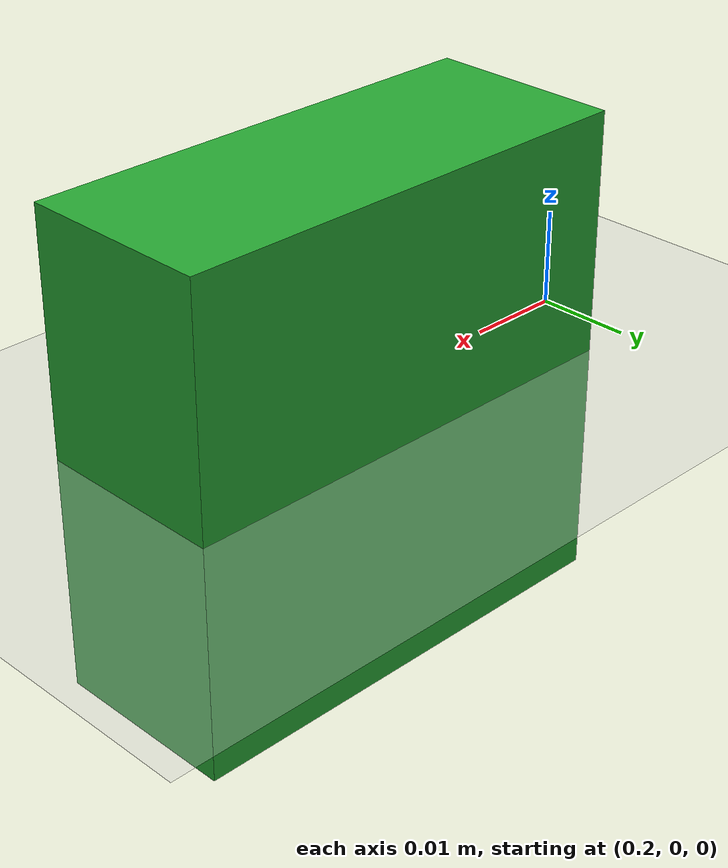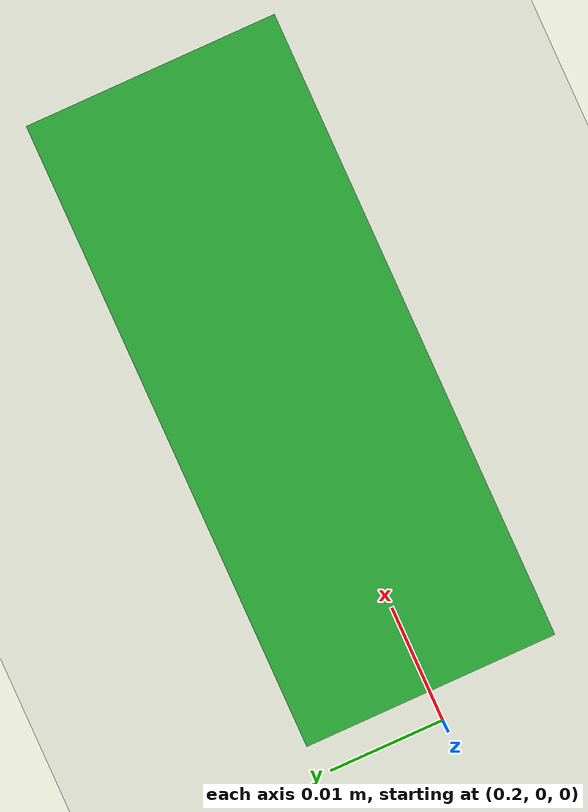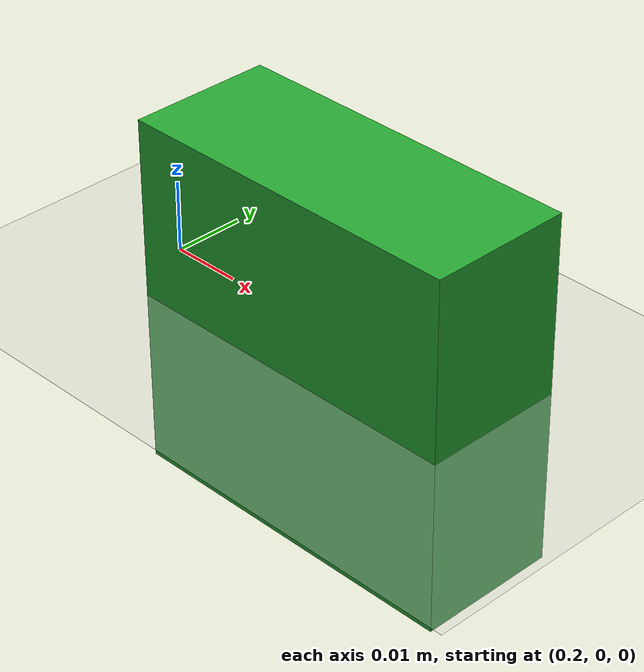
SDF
<sdf version="1.4">
 <world name="default">
  <include><uri>model://ground_plane</uri></include>
  <include><uri>model://sun</uri></include>
  <scene><ambient>0.0 0.0 0.0 1.0</ambient><shadows>0</shadows></scene>
  <model name="ground_plane">
   <static>1</static>
   <link name="link">
    <collision name="collision">
     <geometry><plane><normal>0 0 1</normal><size>100 100</size></plane></geometry>
     <surface><friction><ode><mu>100</mu><mu2>50</mu2></ode></friction></surface>
    </collision>
    <visual name="visual">
     <cast_shadows>0</cast_shadows>
     <geometry><plane><normal>0 0 1</normal><size>100 100</size></plane></geometry>
     <material>
      <script><uri>file://media/materials/scripts/gazebo.material</uri><name>Gazebo/Grey</name></script>
     </material>
    </visual>
    <velocity_decay><linear>0</linear><angular>0</angular></velocity_decay>
   </link>
  </model>
  <light name="sun" type="directional">
   <pose>0 0 10 0 -0 0</pose>
   <diffuse>0.8 0.8 0.8 1</diffuse>
   <specular>0.2 0.2 0.2 1</specular>
   <attenuation>
    <range>1000</range>
    <constant>0.9</constant>
    <linear>0.01</linear>
    <quadratic>0.001</quadratic>
   </attenuation>
   <direction>-0.5 0.1 -0.9</direction>
  </light>
  <scene><ambient>0 0 0 1</ambient><shadows>0</shadows><background>0.7 0.7 0.7 1</background></scene>
  <physics type="ode">
   <max_step_size>0.001</max_step_size>
   <real_time_factor>1</real_time_factor>
   <real_time_update_rate>1000</real_time_update_rate>
   <gravity>0 0 -9.81</gravity>
  </physics>
  <spherical_coordinates>
   <surface_model>EARTH_WGS84</surface_model>
   <latitude_deg>0</latitude_deg>
   <longitude_deg>0</longitude_deg>
   <elevation>0</elevation>
   <heading_deg>0</heading_deg>
  </spherical_coordinates>
  <model name="object">
   <link name="obj">
    <inertial>
     <mass>0.0565</mass>
     <inertia>
      <ixx>2.3541666666666672e-05</ixx>
      <ixy>0</ixy>
      <ixz>0</ixz>
      <iyy>2.3541666666666672e-05</iyy>
      <iyz>0</iyz>
      <izz>2.3541666666666672e-05</izz>
     </inertia>
    </inertial>
    <collision name="Table_collision">
     <geometry><box><size>0.05 0.02 0.05</size></box></geometry>
     <surface>
      <friction>
       <ode><kp>100000</kp><kd>1</kd><max_vel>1.0</max_vel><min_depth>0.001</min_depth><mu>1</mu><mu2>1</mu2></ode>
      </friction>
     </surface>
    </collision>
    <visual name="Table_visual_OBJ">
     <geometry><box><size>0.05 0.02 0.05</size></box></geometry>
     <material><script><name>Gazebo/Green</name><uri>__default__</uri></script></material>
    </visual>
    <velocity_decay><linear>0</linear><angular>0</angular></velocity_decay>
    <velocity_decay><linear>0</linear><angular>0</angular></velocity_decay>
   </link>
   <pose>0.23 0.0 0.0 0 0 0</pose>
   <static>0</static>
  </model>
 </world>
</sdf>
